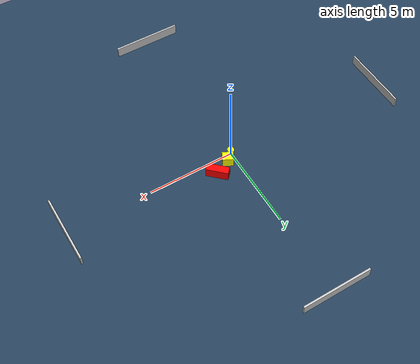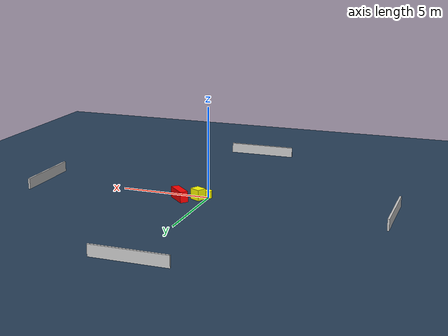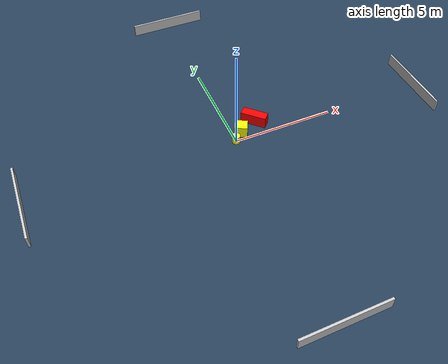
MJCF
<?xml version="1.0" ?>
<mujoco model="generated_environment">
  <option timestep="0.01" integrator="RK4" cone="elliptic"/>
  <default>
    <geom density="1"/>
  </default>
  <asset>
    <texture builtin="gradient" height="3072" name="skybox" rgb1="0.3 0.5 0.7" rgb2="0 0 0" type="skybox" width="512"/>
    <texture builtin="checker" height="300" name="groundplane" rgb1="0.2 0.3 0.4" rgb2="0.1 0.2 0.3" type="2d" width="300"/>
    <material name="groundplane" reflectance="0.2" texrepeat="5 5" texture="groundplane"/>
  </asset>
  <worldbody>
    <light dir="0 0 -1" directional="true" pos="0 0 1.5"/>
    <geom condim="3" friction="0.5 0.005 0.001" material="groundplane" name="floor" pos="0 0 0" size="0 0 0.05" type="plane"/>
    <body name="walls">
      <geom name="wall_1" condim="4" pos="-10.0 0.0 0.3" rgba="0.800000011920929 0.800000011920929 0.800000011920929 1.0" size="0.05 2.0 0.3" type="box"/>
      <geom name="wall_2" condim="4" pos="10.0 0.0 0.3" rgba="0.800000011920929 0.800000011920929 0.800000011920929 1.0" size="0.05 2.0 0.3" type="box"/>
      <geom name="wall_3" condim="4" pos="0.0 -10.0 0.3" rgba="0.800000011920929 0.800000011920929 0.800000011920929 1.0" size="2.0 0.05 0.3" type="box"/>
      <geom name="wall_4" condim="4" pos="0.0 10.0 0.3" rgba="0.800000011920929 0.800000011920929 0.800000011920929 1.0" size="2.0 0.05 0.3" type="box"/>
    </body>
    <body name="robot">
      <joint name="joint_x" type="slide" pos="0 0 0" axis="1 0 0"/>
      <joint name="joint_y" type="slide" pos="0 0 0" axis="0 1 0"/>
      <geom name="robot" type="cylinder" pos="0.0 0.0 0.2" size="0.2 0.2 0.0" mass="5.0" friction="1.0 0.005 0.0001" condim="4" rgba="1.0 1.0 0.0 1.0"/>
    </body>
    <body name="obstacle_1_movable">
      <geom name="obstacle_1_movable" condim="4" pos="0.4422735015777972 0.4110929147293421 0.3" euler="0 0 243.31761968131704" friction="0.0 0.005 0.001" rgba="1.0 1.0 0.0 1.0" size="0.26689454925401446 0.30880137388222983 0.3" type="box" mass="0.1"/>
      <joint type="free"/>
    </body>
    <body name="obstacle_2_static">
      <geom name="obstacle_2_static" condim="4" pos="1.343940307281764 0.8506881658922666 0.3" euler="0 0 225.49372350562456" friction="0.0 0.005 0.001" rgba="1.0 0.0 0.0 1.0" size="0.2191395606916725 0.6288519048380328 0.3" type="box"/>
    </body>
  </worldbody>
  <actuator>
    <motor name="actuator_x" joint="joint_x" gear="1" ctrlrange="-1 1"/>
    <motor name="actuator_y" joint="joint_y" gear="1" ctrlrange="-1 1"/>
  </actuator>
</mujoco>
